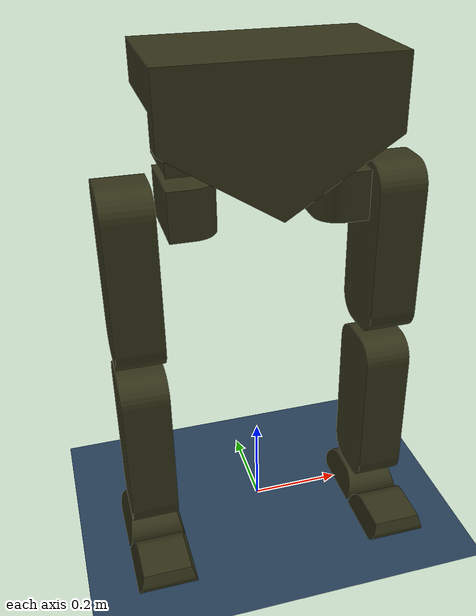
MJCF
<mujoco model="bipede">
    <option gravity = "0 0 -9.81" timestep="0.005"/>
    <compiler meshdir="assets" angle="radian"/>
    <asset>
        <mesh name="hip" file="hip.obj" scale="0.001 0.001 0.001"/>
        <mesh name="upper_left_leg" file="upper_left_leg.obj" scale="0.001 0.001 0.001"/>
        <mesh name="lower_left_leg" file="lower_left_leg.obj" scale="0.001 0.001 0.001"/>
        <mesh name="right_upper_leg" file="right_upper_leg.obj" scale="0.001 0.001 0.001"/>
        <mesh name="right_lower_leg" file="right_lower_leg.obj" scale="0.001 0.001 0.001"/>
        <mesh name="left_back_foot" file="left_back_foot.obj" scale="0.001 0.001 0.001"/>
        <mesh name="left_front_foot" file="left_front_foot.obj" scale="0.001 0.001 0.001"/>
        <mesh name="left_yaw_knuckle" file="left_yaw_knuckle.obj" scale="0.001 0.001 0.001"/>
        <mesh name="left_roll_knuckle" file="left_roll_knuckle.obj" scale="0.001 0.001 0.001"/>
        <mesh name="right_back_foot" file="right_back_foot.obj" scale="0.001 0.001 0.001"/>
        <mesh name="right_front_foot" file="right_front_foot.obj" scale="0.001 0.001 0.001"/>
        <mesh name="right_yaw_knuckle" file="right_yaw_knuckle.obj" scale="0.001 0.001 0.001"/>
        <mesh name="right_roll_knuckle" file="right_roll_knuckle.obj" scale="0.001 0.001 0.001"/>
        <texture type="2d" name="groundplane" builtin="checker" mark="edge" rgb1="0.2 0.3 0.4" rgb2="0.1 0.2 0.3" markrgb="0.8 0.8 0.8" width="300" height="300"/>
        <material name="groundplane" texture="groundplane" texuniform="true" texrepeat="5 5" reflectance="0.2"/>
    </asset>
    <visual>
        <headlight diffuse="1 1 1" ambient="1 1 1" specular="0 0 0"/>
        <rgba haze="0.15 0.25 0.35 1"/>
        <global azimuth="150" elevation="-20"/>
    </visual>
    <worldbody>
        <light pos="0 0 2" dir="0 0 -1" directional="false"/>
        <body>
            <joint type="free"/>
            <geom type="mesh" mesh="hip" euler="0 0 1.5708" pos="0 -0.12 0" rgba="0.2 0.2 0.1 1"/>
            <body>
                <joint name="left_roll" type="hinge" axis="0 1 0" pos = "0.15 0 0.9" range = "-0.52 0.52" limited="true"/>
                <geom type="mesh" mesh="left_roll_knuckle" euler="0 0 1.5708" pos="0 -0.12 0" rgba="0.2 0.2 0.1 1"/>
                <body>
                    <joint name="left_yaw" type="hinge" axis="0 0  1" pos = "0.2 0.05 0.85" range = "-0.52 0.52" limited="true"/>
                    <geom type="mesh" mesh="left_yaw_knuckle" euler="0 0 1.5708" pos="0 -0.12 0" rgba="0.2 0.2 0.1 1"/>
                    <body>
                        <joint name="left_leg" type="hinge" axis="1 0 0" pos = "0.2 0 0.8" range = "-1.56 1.56" limited="true"/>
                        <geom type="mesh" mesh="upper_left_leg" euler="0 0 1.5708" pos="0 -0.12 0" rgba="0.2 0.2 0.1 1"/>
                        <body>
                            <joint name="left_knee" type="hinge" axis="1 0 0" pos = "0 0.05 0.5" range ="0 1.56" limited="true"/>
                            <geom type="mesh" mesh="lower_left_leg" euler="0 0 1.5708" pos="0 -0.12 0" rgba="0.2 0.2 0.1 1"/>
                            <body>
                                <joint name="left_ankle" type="hinge" axis="1 0 0" pos = "0 0 0.06" range = "-0.52 0.52" limited="true"/>
                                <geom type="mesh" mesh="left_back_foot" euler="0 0 1.5708" pos="0 -0.09 0" rgba="0.2 0.2 0.1 1"/>
                                <body>
                                    <geom type="mesh" mesh="left_front_foot" euler="0 0 1.5708" pos="0 -0.09 0" rgba="0.2 0.2 0.1 1"/>
                                </body>
                            </body>
                        </body>
                    </body>
                </body>
            </body>
            <body>
                <joint name="right_roll" type="hinge" axis="0 1 0" pos = "-0.15 0 0.9" range = "-0.52 0.52" limited="true"/>
                <geom type="mesh" mesh="right_roll_knuckle" euler="0 0 1.5708" pos="0 -0.12 0" rgba="0.2 0.2 0.1 1"/>
                <body>
                    <joint name="right_yaw" type="hinge" axis="0 0  1" pos = "-0.2 0 0.85" range = "-0.52 0.52" limited="true"/>
                    <geom type="mesh" mesh="right_yaw_knuckle" euler="0 0 1.5708" pos="0 -0.12 0" rgba="0.2 0.2 0.1 1"/>
                    <body>
                        <joint name="right_leg" type="hinge" axis="1 0 0" pos = "-0.2 0.05 0.85" range = "-1.56 1.56" limited="true"/>
                        <geom type="mesh" mesh="right_upper_leg" euler="0 0 1.5708" pos="0 -0.12 0" rgba="0.2 0.2 0.1 1"/>
                        <body>
                            <joint name="right_knee" type="hinge" axis="1 0 0" pos = "0 0.05 0.5" range = "0 1.56" limited="true"/>
                            <geom type="mesh" mesh="right_lower_leg" euler="0 0 1.5708" pos="0 -0.12 0" rgba="0.2 0.2 0.1 1"/>
                            <body>
                                <joint name="right_ankle" type="hinge" axis="1 0 0" pos = "0 0 0.06" range = "-0.52 0.52" limited="true"/>
                                <geom type="mesh" mesh="right_back_foot" euler="0 0 1.5708" pos="0 -0.09 0" rgba="0.2 0.2 0.1 1"/>
                                <body>
                                    <geom type="mesh" mesh="right_front_foot" euler="0 0 1.5708" pos="0 -0.09 0" rgba="0.2 0.2 0.1 1"/>
                                </body>
                            </body>
                        </body>
                    </body>
                </body>
            </body>
        </body>
        <geom name="floor" size="0 0 .125" type="plane" material="groundplane" conaffinity="15" condim="3"/>
        <camera name="following_camera" pos="0 0 1" euler="0 0 0"/>
    </worldbody>
    <actuator>
        <motor name="leftroll"      joint="left_roll"   gear="1"   ctrlrange="-100 100" />
        <motor name="leftyaw"       joint="left_yaw"    gear="1"   ctrlrange="-100 100" />
        <motor name="left_leg"      joint="left_leg"    gear="1"   ctrlrange="-100 100" />
        <motor name="left_knee"     joint="left_knee"   gear="1"   ctrlrange="-100 100" />
        <motor name="left_ankle"    joint="left_ankle"  gear="1"   ctrlrange="-100 100" />

        <motor name="rightroll"     joint="right_roll"  gear="1"   ctrlrange="-100 100" />
        <motor name="rightyaw"      joint="right_yaw"   gear="1"   ctrlrange="-100 100" />
        <motor name="right_leg"     joint="right_leg"   gear="1"   ctrlrange="-100 100" />
        <motor name="right_knee"    joint="right_knee"  gear="1"   ctrlrange="-100 100" />
        <motor name="right_ankle"   joint="right_ankle" gear="1"   ctrlrange="-100 100" />

  </actuator>
</mujoco>
